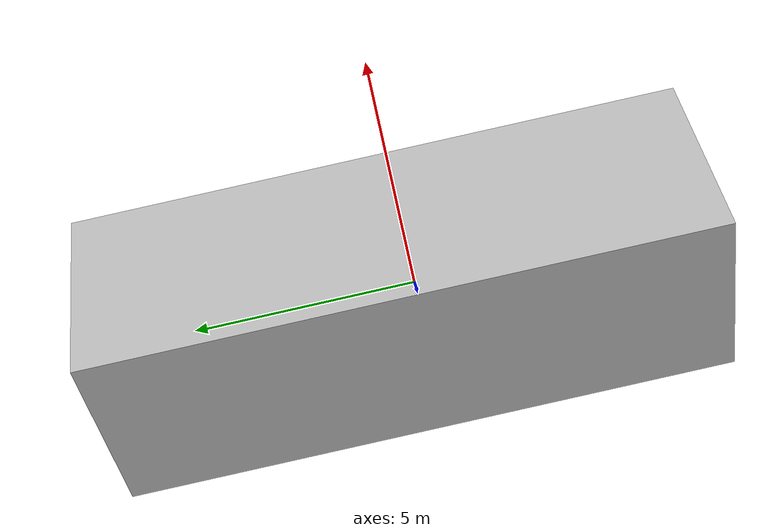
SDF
<sdf version="1.7">
  <model name="farm_loft">
    <static>true</static>
    <link name="farm_loft_link">
      <collision name="farm_loft_collision">
        <geometry>
          <mesh>
            <uri>model://farm_loft/farm_loft.dae</uri>
            <scale>1 1 1</scale>
          </mesh>
        </geometry>
      </collision>
      <visual name="farm_loft_visual">
        <geometry>
          <mesh>
            <uri>model://farm_loft/farm_loft.dae</uri>
            <scale>1 1 1</scale>
          </mesh>
        </geometry>
      </visual>
    </link>
  </model>
</sdf>
